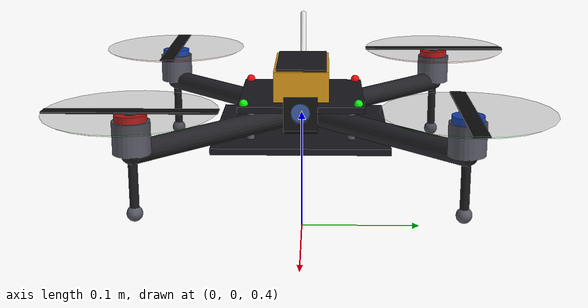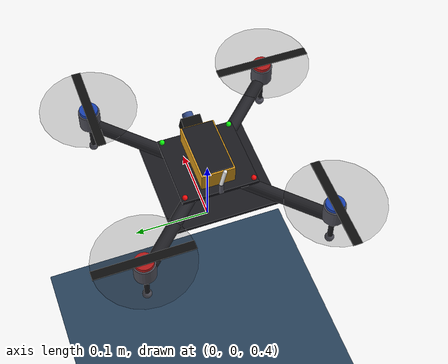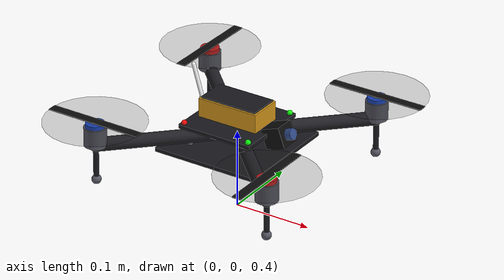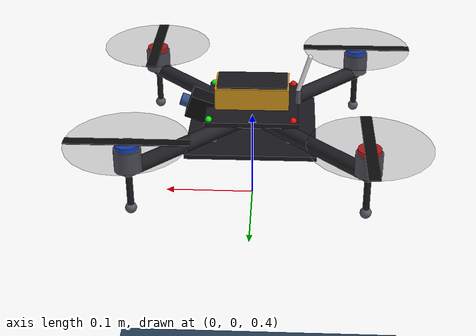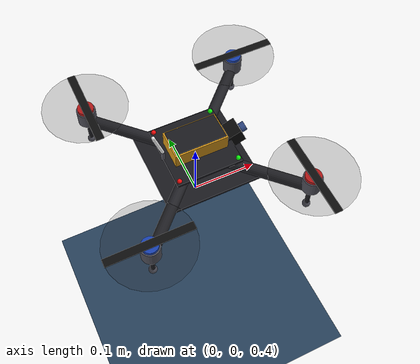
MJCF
<mujoco model="rl_quadcopter">
    <compiler angle="degree" coordinate="local" autolimits="true"/>
    <option timestep="0.005" gravity="0 0 -9.81"/>

    <default>
        <default class="visual">
            <geom contype="0" conaffinity="0" group="2" density="0"/>
        </default>
        <default class="collision">
            <geom group="3" rgba="0.4 0.9 0.4 0.25" friction="0.8 0.02 0.001"/>
        </default>
    </default>

    <asset>
        <texture type="2d" name="grid" builtin="checker" rgb1=".1 .2 .3" rgb2=".2 .3 .4" width="300" height="300"/>
        <material name="mat_grid" texture="grid" texrepeat="8 8" texuniform="true"/>

        <material name="mat_carbon"   rgba="0.10 0.10 0.12 1" specular="0.4" shininess="0.6"/>
        <material name="mat_arm"      rgba="0.13 0.13 0.15 1" specular="0.3"/>
        <material name="mat_motor"    rgba="0.35 0.35 0.40 1" specular="0.6" shininess="0.7"/>
        <material name="mat_bell_cw"  rgba="0.85 0.10 0.10 1" specular="0.5"/>
        <material name="mat_bell_ccw" rgba="0.10 0.30 0.85 1" specular="0.5"/>
        <material name="mat_prop"     rgba="0.05 0.05 0.05 0.9"/>
        <material name="mat_disc"     rgba="0.10 0.10 0.10 0.12"/>
        <material name="mat_battery"  rgba="0.85 0.60 0.10 1"/>
        <material name="mat_camera"   rgba="0.05 0.05 0.05 1"/>
        <material name="mat_lens"     rgba="0.20 0.30 0.55 1" specular="0.9" shininess="0.9"/>
        <material name="mat_led_r"    rgba="1.00 0.05 0.05 1" emission="0.7"/>
        <material name="mat_led_g"    rgba="0.05 1.00 0.05 1" emission="0.7"/>
        <material name="mat_antenna"  rgba="0.95 0.95 0.95 1"/>
    </asset>

    <worldbody>
        <!-- Sàn nhà -->
        <geom name="floor" type="plane" size="0 0 1" material="mat_grid"/>
        <light pos="0 0 3" dir="0 0 -1"/>
        <light pos="2 2 3" dir="-1 -1 -1" diffuse="0.4 0.4 0.4"/>

        <!-- Gốc của Drone -->
        <body name="drone_core" pos="0 0 0.5">
            <freejoint name="root"/>

            <geom class="collision" name="col_chassis" type="box" size="0.07 0.07 0.025" mass="0.55"/>

            <!-- Khung carbon: top + bottom plate -->
            <geom class="visual" name="vis_top_plate" type="box" pos="0 0 0.014" size="0.05 0.05 0.0025" material="mat_carbon"/>
            <geom class="visual" name="vis_bot_plate" type="box" pos="0 0 -0.014" size="0.07 0.07 0.0025" material="mat_carbon"/>
            <!-- Standoffs nối hai plate -->
            <geom class="visual" name="vis_so_FL" type="cylinder" pos="0.040 0.040 0" size="0.003 0.014" material="mat_motor"/>
            <geom class="visual" name="vis_so_FR" type="cylinder" pos="0.040 -0.040 0" size="0.003 0.014" material="mat_motor"/>
            <geom class="visual" name="vis_so_BR" type="cylinder" pos="-0.040 -0.040 0" size="0.003 0.014" material="mat_motor"/>
            <geom class="visual" name="vis_so_BL" type="cylinder" pos="-0.040 0.040 0" size="0.003 0.014" material="mat_motor"/>
            <!-- FC stack ở giữa -->
            <geom class="visual" name="vis_fc" type="box" pos="0 0 0" size="0.018 0.018 0.008" material="mat_motor"/>
            <!-- Pin LiPo trên đỉnh -->
            <geom class="visual" name="vis_battery" type="box" pos="0 0 0.030" size="0.040 0.022 0.012" material="mat_battery"/>
            <geom class="visual" name="vis_battery_strap" type="box" pos="0 0 0.043" size="0.038 0.020 0.0008" material="mat_carbon"/>
            <!-- Camera FPV phía trước, nghiêng lên 20° -->
            <geom class="visual" name="vis_cam_body" type="box"      pos="0.058 0 0.012" euler="0 -20 0" size="0.013 0.013 0.013" material="mat_camera"/>
            <geom class="visual" name="vis_cam_lens" type="cylinder" pos="0.075 0 0.018" euler="0 70 0" size="0.007 0.004"      material="mat_lens"/>
            <!-- Antenna VTX phía sau -->
            <geom class="visual" name="vis_ant_base" type="cylinder" pos="-0.050 0 0.024" size="0.003 0.008" material="mat_motor"/>
            <geom class="visual" name="vis_ant_rod"  type="capsule"  fromto="-0.050 0 0.032 -0.062 0 0.072" size="0.0025" material="mat_antenna"/>
            <!-- LEDs định hướng (xanh trước, đỏ sau) -->
            <geom class="visual" name="vis_led_FL" type="sphere" pos="0.045 0.045 0.018" size="0.0035" material="mat_led_g"/>
            <geom class="visual" name="vis_led_FR" type="sphere" pos="0.045 -0.045 0.018" size="0.0035" material="mat_led_g"/>
            <geom class="visual" name="vis_led_BR" type="sphere" pos="-0.045 -0.045 0.018" size="0.0035" material="mat_led_r"/>
            <geom class="visual" name="vis_led_BL" type="sphere" pos="-0.045 0.045 0.018" size="0.0035" material="mat_led_r"/>

            <!-- ====================== CÁNH 1: Front-Left (CCW) ====================== -->
            <body name="arm_FL" pos="0.12 0.12 0">
                <!-- COLLISION -->
                <geom class="collision" name="col_arm_FL"   type="capsule"  fromto="-0.115 -0.115 0 -0.005 -0.005 0" size="0.011" mass="0.020"/>
                <geom class="collision" name="col_motor_FL" type="cylinder" pos="0 0 0.012" size="0.017 0.018" mass="0.040"/>
                <geom class="collision" name="col_foot_FL"  type="sphere"   pos="0 0 -0.046" size="0.006" mass="0.005"/>
                <!-- VISUAL: arm + motor + bell + propeller + landing leg -->
                <geom class="visual" type="capsule"  fromto="-0.105 -0.105 0 0 0 0" size="0.0085" material="mat_arm"/>
                <geom class="visual" type="cylinder" pos="0 0 0.012" size="0.014 0.012" material="mat_motor"/>
                <geom class="visual" type="cylinder" pos="0 0 0.026" size="0.012 0.003" material="mat_bell_ccw"/>
                <geom class="visual" type="cylinder" pos="0 0 0.030" size="0.005 0.001" material="mat_carbon"/>
                <!-- Cánh quạt 2-blade (CCW: hướng theo trục X) -->
                <geom class="visual" type="box"      pos="0 0 0.031" size="0.063 0.006 0.0006" material="mat_prop"/>
                <geom class="visual" type="cylinder" pos="0 0 0.031" size="0.063 0.0003" material="mat_disc"/>
                <!-- Landing leg + foot -->
                <geom class="visual" type="capsule"  fromto="0 0 -0.005 0 0 -0.045" size="0.0035" material="mat_carbon"/>
                <geom class="visual" type="sphere"   pos="0 0 -0.046" size="0.006" material="mat_motor"/>
                <!-- Site neo lực đẩy -->
                <site name="rotor_FL" type="cylinder" pos="0 0 0.030" size="0.06 0.001" rgba="0.2 1.0 0.2 0.2"/>
            </body>

            <!-- ====================== CÁNH 2: Front-Right (CW) ====================== -->
            <body name="arm_FR" pos="0.12 -0.12 0">
                <geom class="collision" name="col_arm_FR"   type="capsule"  fromto="-0.115 0.115 0 -0.005 0.005 0" size="0.011" mass="0.020"/>
                <geom class="collision" name="col_motor_FR" type="cylinder" pos="0 0 0.012" size="0.017 0.018" mass="0.040"/>
                <geom class="collision" name="col_foot_FR"  type="sphere"   pos="0 0 -0.046" size="0.006" mass="0.005"/>
                <geom class="visual" type="capsule"  fromto="-0.105 0.105 0 0 0 0" size="0.0085" material="mat_arm"/>
                <geom class="visual" type="cylinder" pos="0 0 0.012" size="0.014 0.012" material="mat_motor"/>
                <geom class="visual" type="cylinder" pos="0 0 0.026" size="0.012 0.003" material="mat_bell_cw"/>
                <geom class="visual" type="cylinder" pos="0 0 0.030" size="0.005 0.001" material="mat_carbon"/>
                <!-- Cánh quạt CW: xoay 90° để khác hình dạng với CCW -->
                <geom class="visual" type="box"      pos="0 0 0.031" euler="0 0 90" size="0.063 0.006 0.0006" material="mat_prop"/>
                <geom class="visual" type="cylinder" pos="0 0 0.031" size="0.063 0.0003" material="mat_disc"/>
                <geom class="visual" type="capsule"  fromto="0 0 -0.005 0 0 -0.045" size="0.0035" material="mat_carbon"/>
                <geom class="visual" type="sphere"   pos="0 0 -0.046" size="0.006" material="mat_motor"/>
                <site name="rotor_FR" type="cylinder" pos="0 0 0.030" size="0.06 0.001" rgba="0.2 1.0 0.2 0.2"/>
            </body>

            <!-- ====================== CÁNH 3: Back-Right (CCW) ====================== -->
            <body name="arm_BR" pos="-0.12 -0.12 0">
                <geom class="collision" name="col_arm_BR"   type="capsule"  fromto="0.115 0.115 0 0.005 0.005 0" size="0.011" mass="0.020"/>
                <geom class="collision" name="col_motor_BR" type="cylinder" pos="0 0 0.012" size="0.017 0.018" mass="0.040"/>
                <geom class="collision" name="col_foot_BR"  type="sphere"   pos="0 0 -0.046" size="0.006" mass="0.005"/>
                <geom class="visual" type="capsule"  fromto="0.105 0.105 0 0 0 0" size="0.0085" material="mat_arm"/>
                <geom class="visual" type="cylinder" pos="0 0 0.012" size="0.014 0.012" material="mat_motor"/>
                <geom class="visual" type="cylinder" pos="0 0 0.026" size="0.012 0.003" material="mat_bell_ccw"/>
                <geom class="visual" type="cylinder" pos="0 0 0.030" size="0.005 0.001" material="mat_carbon"/>
                <geom class="visual" type="box"      pos="0 0 0.031" size="0.063 0.006 0.0006" material="mat_prop"/>
                <geom class="visual" type="cylinder" pos="0 0 0.031" size="0.063 0.0003" material="mat_disc"/>
                <geom class="visual" type="capsule"  fromto="0 0 -0.005 0 0 -0.045" size="0.0035" material="mat_carbon"/>
                <geom class="visual" type="sphere"   pos="0 0 -0.046" size="0.006" material="mat_motor"/>
                <site name="rotor_BR" type="cylinder" pos="0 0 0.030" size="0.06 0.001" rgba="1.0 0.2 0.2 0.2"/>
            </body>

            <!-- ====================== CÁNH 4: Back-Left (CW) ====================== -->
            <body name="arm_BL" pos="-0.12 0.12 0">
                <geom class="collision" name="col_arm_BL"   type="capsule"  fromto="0.115 -0.115 0 0.005 -0.005 0" size="0.011" mass="0.020"/>
                <geom class="collision" name="col_motor_BL" type="cylinder" pos="0 0 0.012" size="0.017 0.018" mass="0.040"/>
                <geom class="collision" name="col_foot_BL"  type="sphere"   pos="0 0 -0.046" size="0.006" mass="0.005"/>
                <geom class="visual" type="capsule"  fromto="0.105 -0.105 0 0 0 0" size="0.0085" material="mat_arm"/>
                <geom class="visual" type="cylinder" pos="0 0 0.012" size="0.014 0.012" material="mat_motor"/>
                <geom class="visual" type="cylinder" pos="0 0 0.026" size="0.012 0.003" material="mat_bell_cw"/>
                <geom class="visual" type="cylinder" pos="0 0 0.030" size="0.005 0.001" material="mat_carbon"/>
                <geom class="visual" type="box"      pos="0 0 0.031" euler="0 0 90" size="0.063 0.006 0.0006" material="mat_prop"/>
                <geom class="visual" type="cylinder" pos="0 0 0.031" size="0.063 0.0003" material="mat_disc"/>
                <geom class="visual" type="capsule"  fromto="0 0 -0.005 0 0 -0.045" size="0.0035" material="mat_carbon"/>
                <geom class="visual" type="sphere"   pos="0 0 -0.046" size="0.006" material="mat_motor"/>
                <site name="rotor_BL" type="cylinder" pos="0 0 0.030" size="0.06 0.001" rgba="1.0 0.2 0.2 0.2"/>
            </body>
        </body>
    </worldbody>

    <!-- Ánh xạ tín hiệu từ mạng nơ-ron thành lực vật lý -->
    <actuator>
        <general name="thrust_FL" site="rotor_FL" ctrlrange="0 10" gear="0 0 1 0 0 0.05"/>
        <general name="thrust_FR" site="rotor_FR" ctrlrange="0 10" gear="0 0 1 0 0 -0.05"/>
        <general name="thrust_BR" site="rotor_BR" ctrlrange="0 10" gear="0 0 1 0 0 0.05"/>
        <general name="thrust_BL" site="rotor_BL" ctrlrange="0 10" gear="0 0 1 0 0 -0.05"/>
    </actuator>
</mujoco>
